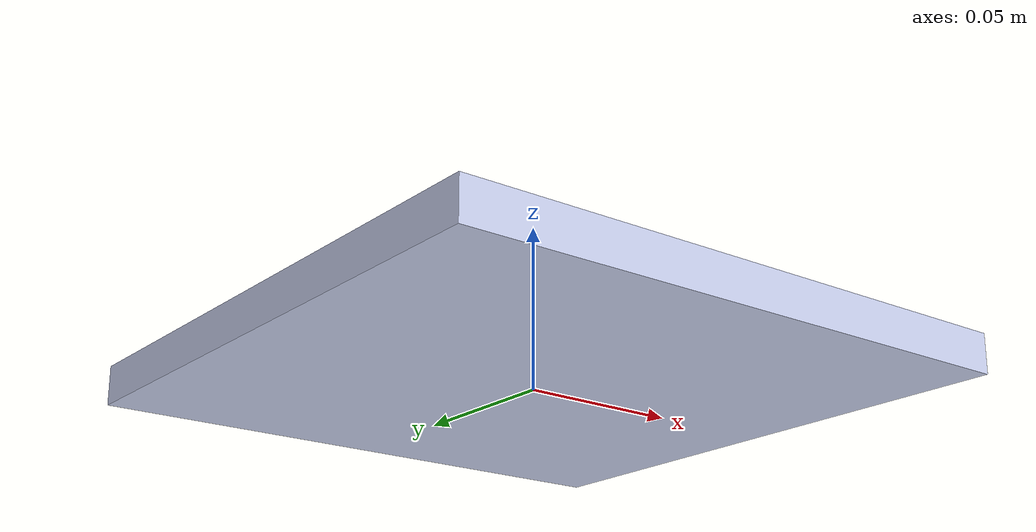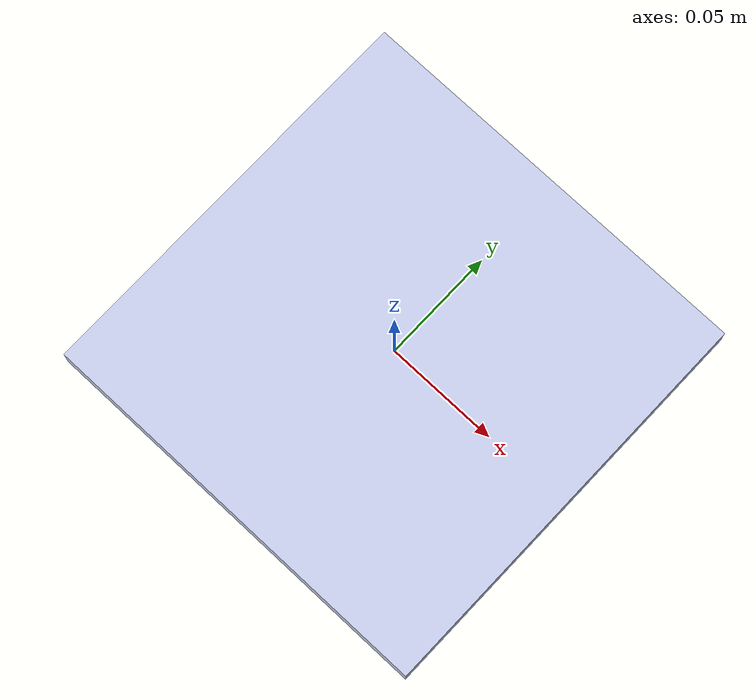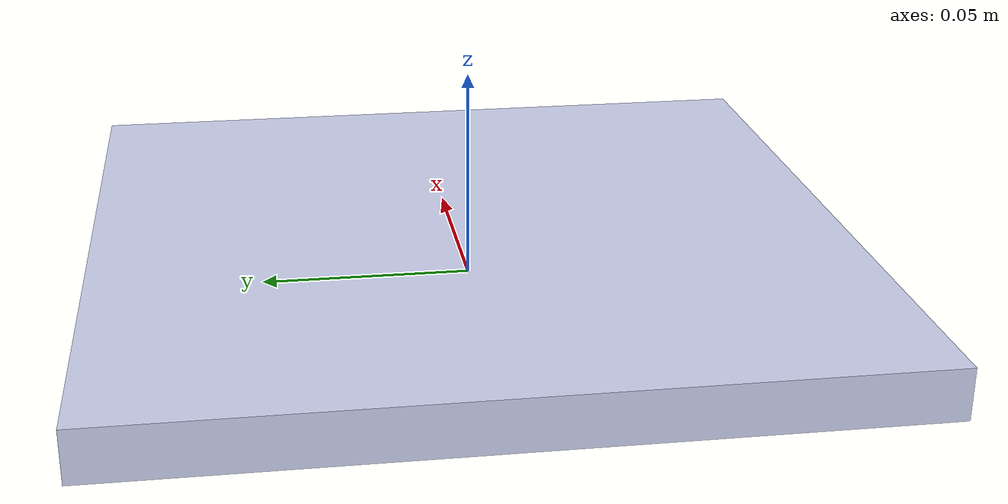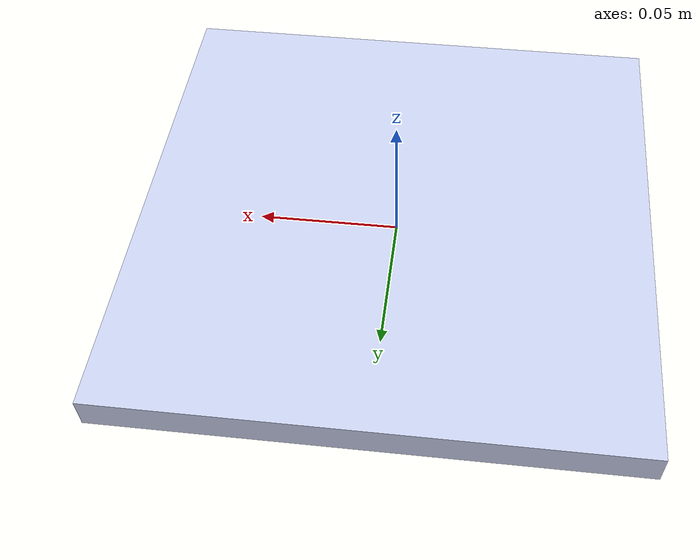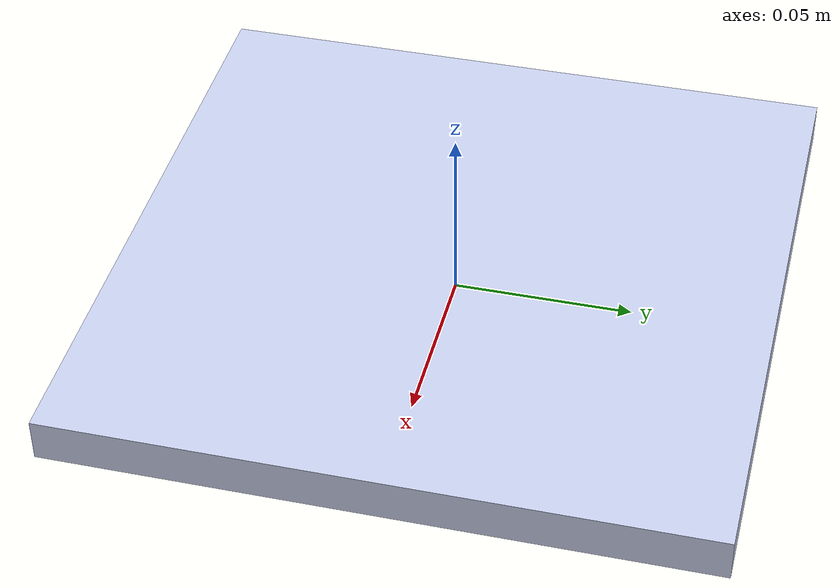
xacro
<?xml version="1.0" encoding="utf-8"?>
<robot name="robot_base" xmlns:xacro="http://www.ros.org/wiki/xacro">
  <link name="robot_base">
    <inertial>
      <origin
        xyz="0 3.67381906146713E-19 0.006"
        rpy="0 0 0" />
      <mass
        value="0.3888" />
      <inertia
        ixx="0.0010544"
        ixy="0"
        ixz="0"
        iyy="0.0010544"
        iyz="6.39918050189883E-20"
        izz="0.0020995" />
    </inertial>
    <visual>
      <origin
        xyz="0 0 0"
        rpy="1.5707963267949 0 0" />
      <geometry>
        <mesh
          filename="package://cai_env/meshes/robot_base.STL" />
      </geometry>
      <material
        name="">
        <color
          rgba="0.79216 0.81961 0.93333 1" />
        <texture
          filename="package://cai_env/textures/" />
      </material>
    </visual>
    <collision>
      <origin
        xyz="0 0 0"
        rpy="1.5707963267949 0 0" />
      <geometry>
        <mesh
          filename="package://cai_env/meshes/robot_base.STL" />
      </geometry>
    </collision>
  </link>

  <gazebo reference="robot_base">
    <material>Gazebo/CeilingTiled</material>
  </gazebo>

</robot>
